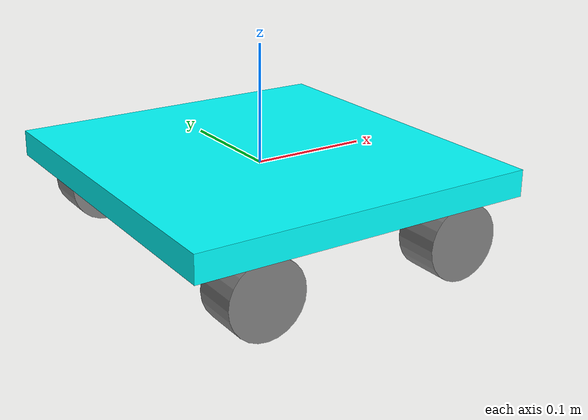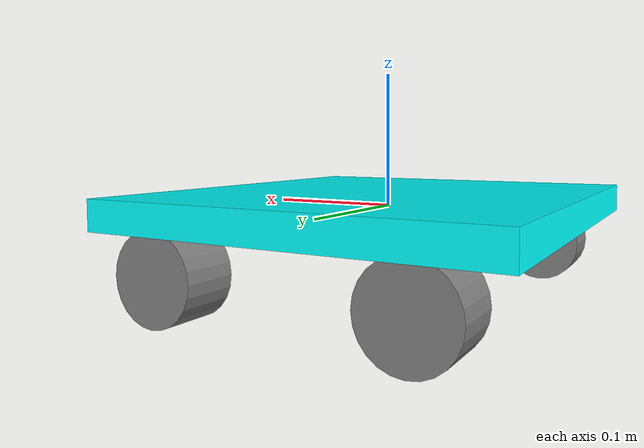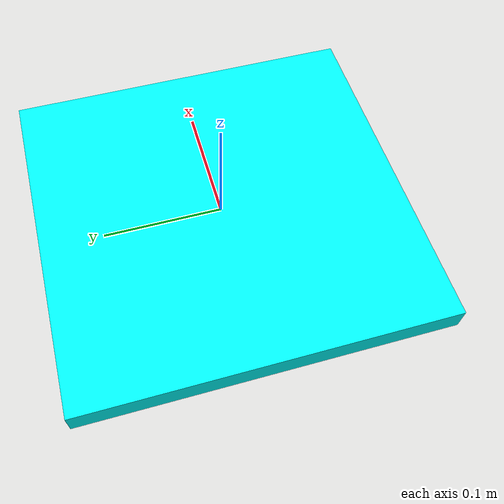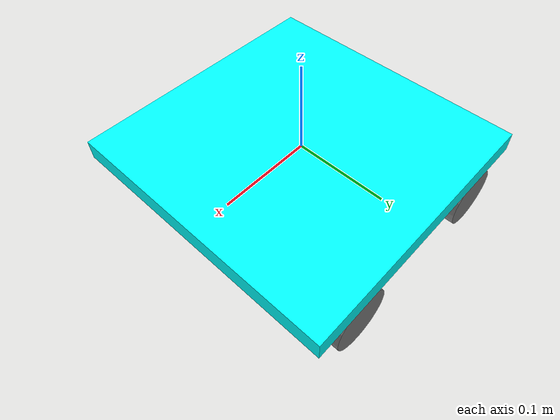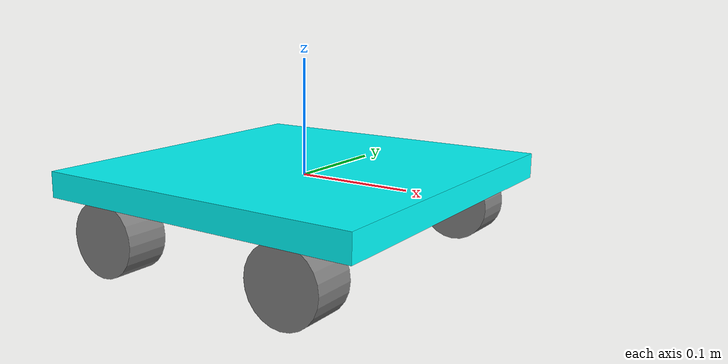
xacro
<?xml version="1.0"?>
<robot xmlns:xacro="http://www.ros.org/wiki/xacro"  name="robot">

  <xacro:include filename="inertial_macros.xacro" />

  <xacro:property name="base_width" value="0.30353"/> <!-- Left to right (11.95 in)-->
  <xacro:property name="base_length" value="0.2921"/> <!-- Front to back (11.5 in)-->
  <xacro:property name="base_height" value="0.022225"/> <!-- bottom to top (7/8 in)-->

  <xacro:property name="wheel_radius" value="0.03175"/> <!-- 1.25 in-->
  <xacro:property name="wheel_width" value="0.0381"/> <!--Only used if wheels are not underneath the robot-->
  <xacro:property name="wheel_ygap" value="-0.02005"/> <!-- Sets gap between robot and base and wheels (negative if wheels are underneath) Wheel Separation = base_width + 2 * ygap-->
  <xacro:property name="wheel_zoff" value=".0381"/> <!-- midpoint of robot base to midpoint of wheel-->
  <xacro:property name="wheel_xoff" value=".0889"/> <!-- distance to midpoint of wheel separation-->

<!-- Robot Base -->
  <link name="base_link">
    <visual>
      <geometry>
        <box size="${base_length} ${base_width} ${base_height}"/>
      </geometry>
      <material name="Cyan">
        <color rgba="0 1.0 1.0 1.0"/>
      </material>
    </visual>
    <!--Collision Info-->
    <collision>
      <geometry>
        <box size="${base_length} ${base_width} ${base_height}"/>
      </geometry>
    </collision>

    <xacro:inertial_box mass="1.0" x="${base_length}" y="${base_width}" z="${base_height}" >
        <origin xyz= "0 0 0" rpy= "0 0 0"/>
    </xacro:inertial_box>
  </link>

    <gazebo reference="base_link">
        <material>Gazebo/Blue</material>
    </gazebo>

  <!-- Robot Footprint -->
  <link name="base_footprint"/>

  <joint name="base_joint" type="fixed">
    <parent link="base_link"/>
    <child link="base_footprint"/>
    <origin xyz="0.0 0.0 ${-(wheel_radius+wheel_zoff)}" rpy="0 0 0"/>
  </joint>

  <!-- Wheels -->
  <xacro:macro name="wheel" params="prefix x_reflect y_reflect">
    <link name="${prefix}_link">
      <visual>
        <origin xyz="0 0 0" rpy="${pi/2} 0 0"/>
        <geometry>
            <cylinder radius="${wheel_radius}" length="${wheel_width}"/>
        </geometry>
        <material name="Gray">
          <color rgba="0.5 0.5 0.5 1.0"/>
        </material>
      </visual>

      <!-- Collision Info -->
      <collision>
        <origin xyz="0 0 0" rpy="${pi/2} 0 0"/>
        <geometry>
            <cylinder radius="${wheel_radius}" length="${wheel_width}"/>
        </geometry>
      </collision>

       <xacro:inertial_cylinder mass=".2" radius="${wheel_radius}" length="${wheel_width}" >
        <origin xyz= "0 0 0" rpy= "0 0 0"/>
       </xacro:inertial_cylinder>
    </link>

    <joint name="${prefix}_joint" type="continuous">
      <parent link="base_link"/>
      <child link="${prefix}_link"/>
      <origin xyz="${x_reflect*wheel_xoff} ${y_reflect*(base_width/2+wheel_ygap)} ${-wheel_zoff}" rpy="0 0 0"/>
      <axis xyz="0 1 0"/>
    </joint>
 </xacro:macro>

  <xacro:wheel prefix="drivewhl_bl" x_reflect="-1" y_reflect="1" />
  <xacro:wheel prefix="drivewhl_br" x_reflect="-1" y_reflect="-1" />
  <xacro:wheel prefix="drivewhl_fl" x_reflect="1" y_reflect="1" />
  <xacro:wheel prefix="drivewhl_fr" x_reflect="1" y_reflect="-1" />

  <!--       Gazebo Reference (not tested)      -->
  <gazebo reference="drivewhl_bl_link">
        <material>Gazebo/Black</material>
    </gazebo>

  <gazebo reference="drivewhl_br_link">
        <material>Gazebo/Black</material>
    </gazebo>

  <gazebo reference="drivewhl_fl_link">
        <material>Gazebo/Black</material>
        <mu1 value="0.0001"/> <!--Makes Wheels Frictionless (Used to implement RWD)-->
        <mu2 value="0.0001"/>
    </gazebo>

  <gazebo reference="drivewhl_fr_link">
        <material>Gazebo/Black</material>
        <mu1 value="0.0001"/> <!--Makes Wheels Frictionless (Used to implement RWD)-->
        <mu2 value="0.0001"/>
    </gazebo>

</robot>

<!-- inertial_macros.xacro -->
<robot xmlns:xacro="http://www.ros.org/wiki/xacro" >

    <!-- Specify some standard inertial calculations https://en.wikipedia.org/wiki/List_of_moments_of_inertia -->
    <!-- These make use of xacro's mathematical functionality -->

    <xacro:macro name="inertial_box" params="mass x y z *origin">
        <inertial>
            <xacro:insert_block name="origin"/>
            <mass value="${mass}" />
            <inertia ixx="${(1/12) * mass * (y*y+z*z)}" ixy="0.0" ixz="0.0"
                    iyy="${(1/12) * mass * (x*x+z*z)}" iyz="0.0"
                    izz="${(1/12) * mass * (x*x+y*y)}" />
        </inertial>
    </xacro:macro>

    <xacro:macro name="inertial_cylinder" params="mass length radius *origin">
        <inertial>
            <xacro:insert_block name="origin"/>
            <mass value="${mass}" />
            <inertia ixx="${(1/12) * mass * (3*radius*radius + length*length)}" ixy="0.0" ixz="0.0"
                    iyy="${(1/12) * mass * (3*radius*radius + length*length)}" iyz="0.0"
                    izz="${(1/2) * mass * (radius*radius)}" />
        </inertial>
    </xacro:macro>

</robot>
